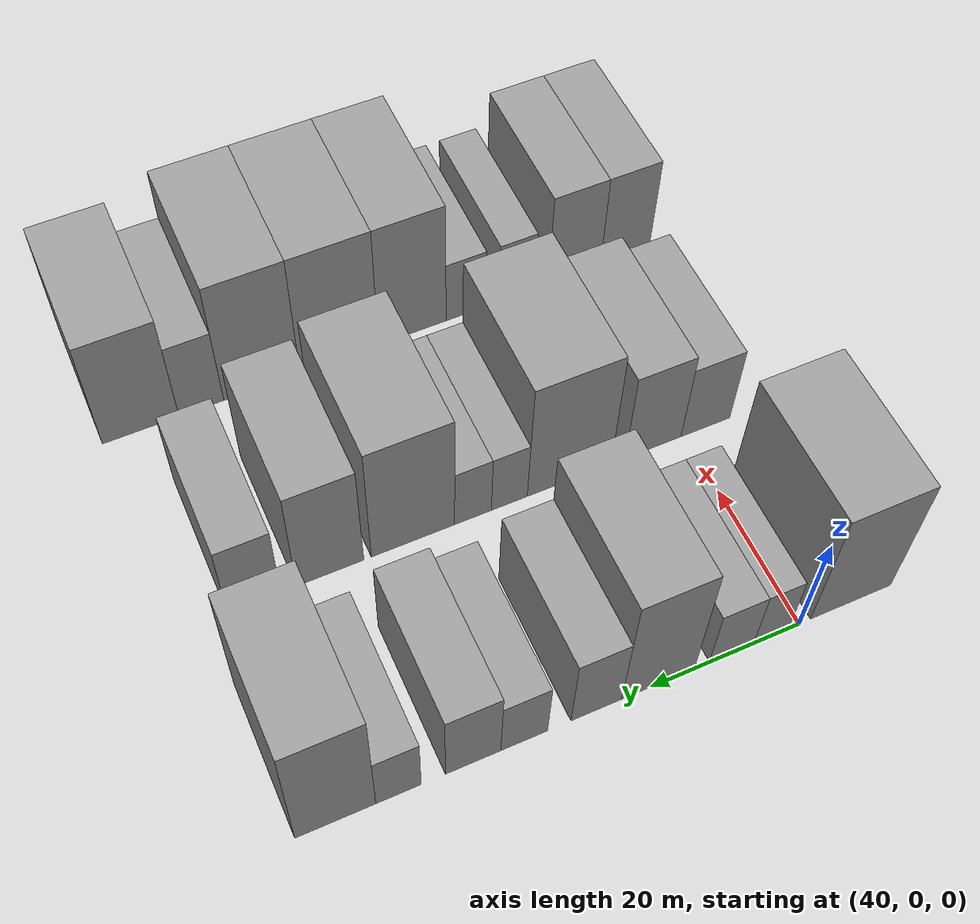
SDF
<sdf version="1.6">
 <world name="default">
  <model name="building_37">
   <static>1</static>
   <pose>50.0000 -7.2156 0 0.000000 0.000000 0.000000</pose>
   <link name="link">
    <pose>0 0 12.00 0 0 0</pose>
    <collision name="collision"><geometry><box><size>20.0000 11.2152 24.0000</size></box></geometry></collision>
    <visual name="visual">
     <cast_shadows>0</cast_shadows>
     <geometry><box><size>20.0000 11.2152 24.0000</size></box></geometry>
     <material>
      <script>
       <uri>model://grey_wall/materials/scripts</uri>
       <uri>model://grey_wall/materials/textures</uri>
       <name>vrc/grey_wall</name>
      </script>
     </material>
    </visual>
   </link>
  </model>
  <model name="building_38">
   <static>1</static>
   <pose>50.0000 3.7937 0 0.000000 0.000000 0.000000</pose>
   <link name="link">
    <pose>0 0 6.00 0 0 0</pose>
    <collision name="collision"><geometry><box><size>20.0000 4.8033 12.0000</size></box></geometry></collision>
    <visual name="visual">
     <cast_shadows>0</cast_shadows>
     <geometry><box><size>20.0000 4.8033 12.0000</size></box></geometry>
     <material>
      <script>
       <uri>model://grey_wall/materials/scripts</uri>
       <uri>model://grey_wall/materials/textures</uri>
       <name>vrc/grey_wall</name>
      </script>
     </material>
    </visual>
   </link>
  </model>
  <model name="building_39">
   <static>1</static>
   <pose>50.0000 9.1888 0 0.000000 0.000000 0.000000</pose>
   <link name="link">
    <pose>0 0 6.00 0 0 0</pose>
    <collision name="collision"><geometry><box><size>20.0000 5.9868 12.0000</size></box></geometry></collision>
    <visual name="visual">
     <cast_shadows>0</cast_shadows>
     <geometry><box><size>20.0000 5.9868 12.0000</size></box></geometry>
     <material>
      <script>
       <uri>model://grey_wall/materials/scripts</uri>
       <uri>model://grey_wall/materials/textures</uri>
       <name>vrc/grey_wall</name>
      </script>
     </material>
    </visual>
   </link>
  </model>
  <model name="building_40">
   <static>1</static>
   <pose>50.0000 18.9999 0 0.000000 0.000000 0.000000</pose>
   <link name="link">
    <pose>0 0 12.00 0 0 0</pose>
    <collision name="collision"><geometry><box><size>20.0000 9.6355 24.0000</size></box></geometry></collision>
    <visual name="visual">
     <cast_shadows>0</cast_shadows>
     <geometry><box><size>20.0000 9.6355 24.0000</size></box></geometry>
     <material>
      <script>
       <uri>model://grey_wall/materials/scripts</uri>
       <uri>model://grey_wall/materials/textures</uri>
       <name>vrc/grey_wall</name>
      </script>
     </material>
    </visual>
   </link>
  </model>
  <model name="building_41">
   <static>1</static>
   <pose>50.0000 27.0947 0 0.000000 0.000000 0.000000</pose>
   <link name="link">
    <pose>0 0 7.50 0 0 0</pose>
    <collision name="collision"><geometry><box><size>20.0000 6.5542 15.0000</size></box></geometry></collision>
    <visual name="visual">
     <cast_shadows>0</cast_shadows>
     <geometry><box><size>20.0000 6.5542 15.0000</size></box></geometry>
     <material>
      <script>
       <uri>model://grey_wall/materials/scripts</uri>
       <uri>model://grey_wall/materials/textures</uri>
       <name>vrc/grey_wall</name>
      </script>
     </material>
    </visual>
   </link>
  </model>
  <model name="building_42">
   <static>1</static>
   <pose>50.0000 36.3470 0 0.000000 0.000000 0.000000</pose>
   <link name="link">
    <pose>0 0 6.00 0 0 0</pose>
    <collision name="collision"><geometry><box><size>20.0000 5.9503 12.0000</size></box></geometry></collision>
    <visual name="visual">
     <cast_shadows>0</cast_shadows>
     <geometry><box><size>20.0000 5.9503 12.0000</size></box></geometry>
     <material>
      <script>
       <uri>model://grey_wall/materials/scripts</uri>
       <uri>model://grey_wall/materials/textures</uri>
       <name>vrc/grey_wall</name>
      </script>
     </material>
    </visual>
   </link>
  </model>
  <model name="building_43">
   <static>1</static>
   <pose>50.0000 42.7750 0 0.000000 0.000000 0.000000</pose>
   <link name="link">
    <pose>0 0 7.50 0 0 0</pose>
    <collision name="collision"><geometry><box><size>20.0000 6.9056 15.0000</size></box></geometry></collision>
    <visual name="visual">
     <cast_shadows>0</cast_shadows>
     <geometry><box><size>20.0000 6.9056 15.0000</size></box></geometry>
     <material>
      <script>
       <uri>model://grey_wall/materials/scripts</uri>
       <uri>model://grey_wall/materials/textures</uri>
       <name>vrc/grey_wall</name>
      </script>
     </material>
    </visual>
   </link>
  </model>
  <model name="building_44">
   <static>1</static>
   <pose>50.0000 51.9969 0 0.000000 0.000000 0.000000</pose>
   <link name="link">
    <pose>0 0 6.00 0 0 0</pose>
    <collision name="collision"><geometry><box><size>20.0000 5.5381 12.0000</size></box></geometry></collision>
    <visual name="visual">
     <cast_shadows>0</cast_shadows>
     <geometry><box><size>20.0000 5.5381 12.0000</size></box></geometry>
     <material>
      <script>
       <uri>model://grey_wall/materials/scripts</uri>
       <uri>model://grey_wall/materials/textures</uri>
       <name>vrc/grey_wall</name>
      </script>
     </material>
    </visual>
   </link>
  </model>
  <model name="building_45">
   <static>1</static>
   <pose>50.0000 59.6336 0 0.000000 0.000000 0.000000</pose>
   <link name="link">
    <pose>0 0 12.00 0 0 0</pose>
    <collision name="collision"><geometry><box><size>20.0000 9.7353 24.0000</size></box></geometry></collision>
    <visual name="visual">
     <cast_shadows>0</cast_shadows>
     <geometry><box><size>20.0000 9.7353 24.0000</size></box></geometry>
     <material>
      <script>
       <uri>model://grey_wall/materials/scripts</uri>
       <uri>model://grey_wall/materials/textures</uri>
       <name>vrc/grey_wall</name>
      </script>
     </material>
    </visual>
   </link>
  </model>
  <model name="building_112">
   <static>1</static>
   <pose>79.0000 -3.1164 0 0.000000 0.000000 0.000000</pose>
   <link name="link">
    <pose>0 0 7.50 0 0 0</pose>
    <collision name="collision"><geometry><box><size>20.0000 7.1452 15.0000</size></box></geometry></collision>
    <visual name="visual">
     <cast_shadows>0</cast_shadows>
     <geometry><box><size>20.0000 7.1452 15.0000</size></box></geometry>
     <material>
      <script>
       <uri>model://grey_wall/materials/scripts</uri>
       <uri>model://grey_wall/materials/textures</uri>
       <name>vrc/grey_wall</name>
      </script>
     </material>
    </visual>
   </link>
  </model>
  <model name="building_113">
   <static>1</static>
   <pose>79.0000 4.4821 0 0.000000 0.000000 0.000000</pose>
   <link name="link">
    <pose>0 0 9.00 0 0 0</pose>
    <collision name="collision"><geometry><box><size>20.0000 8.0517 18.0000</size></box></geometry></collision>
    <visual name="visual">
     <cast_shadows>0</cast_shadows>
     <geometry><box><size>20.0000 8.0517 18.0000</size></box></geometry>
     <material>
      <script>
       <uri>model://grey_wall/materials/scripts</uri>
       <uri>model://grey_wall/materials/textures</uri>
       <name>vrc/grey_wall</name>
      </script>
     </material>
    </visual>
   </link>
  </model>
  <model name="building_114">
   <static>1</static>
   <pose>79.0000 16.4042 0 0.000000 0.000000 0.000000</pose>
   <link name="link">
    <pose>0 0 12.00 0 0 0</pose>
    <collision name="collision"><geometry><box><size>20.0000 11.7925 24.0000</size></box></geometry></collision>
    <visual name="visual">
     <cast_shadows>0</cast_shadows>
     <geometry><box><size>20.0000 11.7925 24.0000</size></box></geometry>
     <material>
      <script>
       <uri>model://grey_wall/materials/scripts</uri>
       <uri>model://grey_wall/materials/textures</uri>
       <name>vrc/grey_wall</name>
      </script>
     </material>
    </visual>
   </link>
  </model>
  <model name="building_115">
   <static>1</static>
   <pose>79.0000 24.7798 0 0.000000 0.000000 0.000000</pose>
   <link name="link">
    <pose>0 0 6.00 0 0 0</pose>
    <collision name="collision"><geometry><box><size>20.0000 4.9587 12.0000</size></box></geometry></collision>
    <visual name="visual">
     <cast_shadows>0</cast_shadows>
     <geometry><box><size>20.0000 4.9587 12.0000</size></box></geometry>
     <material>
      <script>
       <uri>model://grey_wall/materials/scripts</uri>
       <uri>model://grey_wall/materials/textures</uri>
       <name>vrc/grey_wall</name>
      </script>
     </material>
    </visual>
   </link>
  </model>
  <model name="building_116">
   <static>1</static>
   <pose>79.0000 29.7670 0 0.000000 0.000000 0.000000</pose>
   <link name="link">
    <pose>0 0 6.00 0 0 0</pose>
    <collision name="collision"><geometry><box><size>20.0000 5.0158 12.0000</size></box></geometry></collision>
    <visual name="visual">
     <cast_shadows>0</cast_shadows>
     <geometry><box><size>20.0000 5.0158 12.0000</size></box></geometry>
     <material>
      <script>
       <uri>model://grey_wall/materials/scripts</uri>
       <uri>model://grey_wall/materials/textures</uri>
       <name>vrc/grey_wall</name>
      </script>
     </material>
    </visual>
   </link>
  </model>
  <model name="building_117">
   <static>1</static>
   <pose>79.0000 37.8632 0 0.000000 0.000000 0.000000</pose>
   <link name="link">
    <pose>0 0 12.00 0 0 0</pose>
    <collision name="collision"><geometry><box><size>20.0000 11.1765 24.0000</size></box></geometry></collision>
    <visual name="visual">
     <cast_shadows>0</cast_shadows>
     <geometry><box><size>20.0000 11.1765 24.0000</size></box></geometry>
     <material>
      <script>
       <uri>model://grey_wall/materials/scripts</uri>
       <uri>model://grey_wall/materials/textures</uri>
       <name>vrc/grey_wall</name>
      </script>
     </material>
    </visual>
   </link>
  </model>
  <model name="building_118">
   <static>1</static>
   <pose>79.0000 48.8683 0 0.000000 0.000000 0.000000</pose>
   <link name="link">
    <pose>0 0 10.50 0 0 0</pose>
    <collision name="collision"><geometry><box><size>20.0000 8.8338 21.0000</size></box></geometry></collision>
    <visual name="visual">
     <cast_shadows>0</cast_shadows>
     <geometry><box><size>20.0000 8.8338 21.0000</size></box></geometry>
     <material>
      <script>
       <uri>model://grey_wall/materials/scripts</uri>
       <uri>model://grey_wall/materials/textures</uri>
       <name>vrc/grey_wall</name>
      </script>
     </material>
    </visual>
   </link>
  </model>
  <model name="building_119">
   <static>1</static>
   <pose>79.0000 58.7326 0 0.000000 0.000000 0.000000</pose>
   <link name="link">
    <pose>0 0 7.50 0 0 0</pose>
    <collision name="collision"><geometry><box><size>20.0000 6.8946 15.0000</size></box></geometry></collision>
    <visual name="visual">
     <cast_shadows>0</cast_shadows>
     <geometry><box><size>20.0000 6.8946 15.0000</size></box></geometry>
     <material>
      <script>
       <uri>model://grey_wall/materials/scripts</uri>
       <uri>model://grey_wall/materials/textures</uri>
       <name>vrc/grey_wall</name>
      </script>
     </material>
    </visual>
   </link>
  </model>
  <model name="building_175">
   <static>1</static>
   <pose>108.0000 -6.2686 0 0.000000 0.000000 0.000000</pose>
   <link name="link">
    <pose>0 0 9.00 0 0 0</pose>
    <collision name="collision"><geometry><box><size>20.0000 7.5674 18.0000</size></box></geometry></collision>
    <visual name="visual">
     <cast_shadows>0</cast_shadows>
     <geometry><box><size>20.0000 7.5674 18.0000</size></box></geometry>
     <material>
      <script>
       <uri>model://grey_wall/materials/scripts</uri>
       <uri>model://grey_wall/materials/textures</uri>
       <name>vrc/grey_wall</name>
      </script>
     </material>
    </visual>
   </link>
  </model>
  <model name="building_176">
   <static>1</static>
   <pose>108.0000 1.5076 0 0.000000 0.000000 0.000000</pose>
   <link name="link">
    <pose>0 0 9.00 0 0 0</pose>
    <collision name="collision"><geometry><box><size>20.0000 7.9849 18.0000</size></box></geometry></collision>
    <visual name="visual">
     <cast_shadows>0</cast_shadows>
     <geometry><box><size>20.0000 7.9849 18.0000</size></box></geometry>
     <material>
      <script>
       <uri>model://grey_wall/materials/scripts</uri>
       <uri>model://grey_wall/materials/textures</uri>
       <name>vrc/grey_wall</name>
      </script>
     </material>
    </visual>
   </link>
  </model>
  <model name="building_177">
   <static>1</static>
   <pose>108.0000 10.1956 0 0.000000 0.000000 0.000000</pose>
   <link name="link">
    <pose>0 0 6.00 0 0 0</pose>
    <collision name="collision"><geometry><box><size>20.0000 5.3912 12.0000</size></box></geometry></collision>
    <visual name="visual">
     <cast_shadows>0</cast_shadows>
     <geometry><box><size>20.0000 5.3912 12.0000</size></box></geometry>
     <material>
      <script>
       <uri>model://grey_wall/materials/scripts</uri>
       <uri>model://grey_wall/materials/textures</uri>
       <name>vrc/grey_wall</name>
      </script>
     </material>
    </visual>
   </link>
  </model>
  <model name="building_178">
   <static>1</static>
   <pose>108.0000 17.8017 0 0.000000 0.000000 0.000000</pose>
   <link name="link">
    <pose>0 0 6.00 0 0 0</pose>
    <collision name="collision"><geometry><box><size>20.0000 5.8209 12.0000</size></box></geometry></collision>
    <visual name="visual">
     <cast_shadows>0</cast_shadows>
     <geometry><box><size>20.0000 5.8209 12.0000</size></box></geometry>
     <material>
      <script>
       <uri>model://grey_wall/materials/scripts</uri>
       <uri>model://grey_wall/materials/textures</uri>
       <name>vrc/grey_wall</name>
      </script>
     </material>
    </visual>
   </link>
  </model>
  <model name="building_179">
   <static>1</static>
   <pose>108.0000 25.6448 0 0.000000 0.000000 0.000000</pose>
   <link name="link">
    <pose>0 0 12.00 0 0 0</pose>
    <collision name="collision"><geometry><box><size>20.0000 9.8652 24.0000</size></box></geometry></collision>
    <visual name="visual">
     <cast_shadows>0</cast_shadows>
     <geometry><box><size>20.0000 9.8652 24.0000</size></box></geometry>
     <material>
      <script>
       <uri>model://grey_wall/materials/scripts</uri>
       <uri>model://grey_wall/materials/textures</uri>
       <name>vrc/grey_wall</name>
      </script>
     </material>
    </visual>
   </link>
  </model>
  <model name="building_180">
   <static>1</static>
   <pose>108.0000 36.1679 0 0.000000 0.000000 0.000000</pose>
   <link name="link">
    <pose>0 0 12.00 0 0 0</pose>
    <collision name="collision"><geometry><box><size>20.0000 11.1810 24.0000</size></box></geometry></collision>
    <visual name="visual">
     <cast_shadows>0</cast_shadows>
     <geometry><box><size>20.0000 11.1810 24.0000</size></box></geometry>
     <material>
      <script>
       <uri>model://grey_wall/materials/scripts</uri>
       <uri>model://grey_wall/materials/textures</uri>
       <name>vrc/grey_wall</name>
      </script>
     </material>
    </visual>
   </link>
  </model>
  <model name="building_181">
   <static>1</static>
   <pose>108.0000 47.0656 0 0.000000 0.000000 0.000000</pose>
   <link name="link">
    <pose>0 0 12.00 0 0 0</pose>
    <collision name="collision"><geometry><box><size>20.0000 10.6145 24.0000</size></box></geometry></collision>
    <visual name="visual">
     <cast_shadows>0</cast_shadows>
     <geometry><box><size>20.0000 10.6145 24.0000</size></box></geometry>
     <material>
      <script>
       <uri>model://grey_wall/materials/scripts</uri>
       <uri>model://grey_wall/materials/textures</uri>
       <name>vrc/grey_wall</name>
      </script>
     </material>
    </visual>
   </link>
  </model>
  <model name="building_182">
   <static>1</static>
   <pose>108.0000 55.4422 0 0.000000 0.000000 0.000000</pose>
   <link name="link">
    <pose>0 0 7.50 0 0 0</pose>
    <collision name="collision"><geometry><box><size>20.0000 6.1387 15.0000</size></box></geometry></collision>
    <visual name="visual">
     <cast_shadows>0</cast_shadows>
     <geometry><box><size>20.0000 6.1387 15.0000</size></box></geometry>
     <material>
      <script>
       <uri>model://grey_wall/materials/scripts</uri>
       <uri>model://grey_wall/materials/textures</uri>
       <name>vrc/grey_wall</name>
      </script>
     </material>
    </visual>
   </link>
  </model>
  <model name="building_183">
   <static>1</static>
   <pose>108.0000 63.6763 0 0.000000 0.000000 0.000000</pose>
   <link name="link">
    <pose>0 0 10.50 0 0 0</pose>
    <collision name="collision"><geometry><box><size>20.0000 10.3295 21.0000</size></box></geometry></collision>
    <visual name="visual">
     <cast_shadows>0</cast_shadows>
     <geometry><box><size>20.0000 10.3295 21.0000</size></box></geometry>
     <material>
      <script>
       <uri>model://grey_wall/materials/scripts</uri>
       <uri>model://grey_wall/materials/textures</uri>
       <name>vrc/grey_wall</name>
      </script>
     </material>
    </visual>
   </link>
  </model>
 </world>
</sdf>
